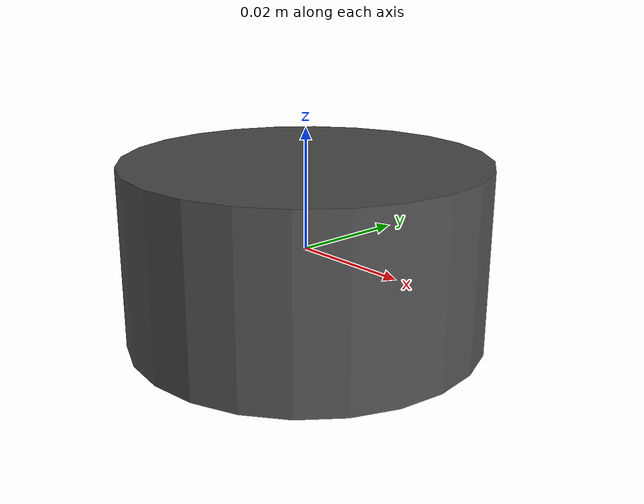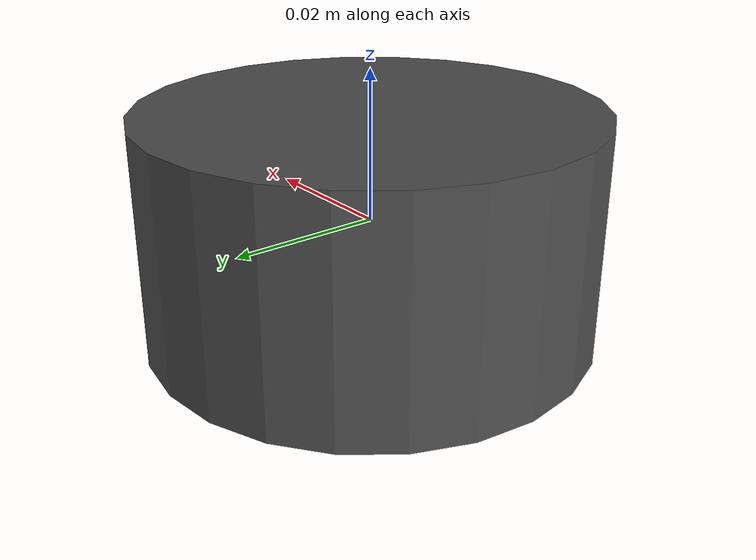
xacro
<?xml version="1.0"?>

<robot name="jetracer_sensor_kit" xmlns:xacro="http://ros.org/wiki/xacro">
  <xacro:include filename="$(find jetracer_driver)/urdf/elp_stereo_camera.urdf.xacro" />

  <xacro:arg name="base_frame" default="base_link" />
  <xacro:arg name="lidar_frame" default="laser" />
  <xacro:arg name="camera_frame" default="camera_camera_link" />
  <xacro:arg name="publish_camera_stereo_tf" default="false" />

  <xacro:arg name="lidar_x" default="0.0" />
  <xacro:arg name="lidar_y" default="0.0" />
  <xacro:arg name="lidar_z" default="0.0" />
  <xacro:arg name="lidar_roll" default="0.0" />
  <xacro:arg name="lidar_pitch" default="0.0" />
  <xacro:arg name="lidar_yaw" default="0.0" />

  <xacro:arg name="camera_x" default="0.0" />
  <xacro:arg name="camera_y" default="0.0" />
  <xacro:arg name="camera_z" default="0.0" />
  <xacro:arg name="camera_roll" default="0.0" />
  <xacro:arg name="camera_pitch" default="0.0" />
  <xacro:arg name="camera_yaw" default="0.0" />
  <xacro:arg name="camera_interocular" default="0.05" />
  <xacro:arg name="camera_mount_to_lens_x" default="0.0" />
  <xacro:arg name="camera_mount_to_lens_y" default="-0.0075" />
  <xacro:arg name="camera_mount_to_lens_z" default="0.0" />

  <link name="$(arg base_frame)" />
  <link name="$(arg camera_frame)_mount" />

  <link name="$(arg lidar_frame)">
    <visual>
      <geometry>
        <cylinder length="0.03" radius="0.03" />
      </geometry>
      <material name="lidar_gray">
        <color rgba="0.3 0.3 0.3 1.0" />
      </material>
    </visual>
  </link>

  <xacro:if value="$(arg publish_camera_stereo_tf)">
    <xacro:elp_stereo_camera name="$(arg camera_frame)" interocular="$(arg camera_interocular)" />
  </xacro:if>

  <xacro:unless value="$(arg publish_camera_stereo_tf)">
    <link name="$(arg camera_frame)" />
  </xacro:unless>

  <joint name="$(arg base_frame)_to_$(arg lidar_frame)" type="fixed">
    <parent link="$(arg base_frame)" />
    <child link="$(arg lidar_frame)" />
    <origin
      xyz="$(arg lidar_x) $(arg lidar_y) $(arg lidar_z)"
      rpy="$(arg lidar_roll) $(arg lidar_pitch) $(arg lidar_yaw)" />
  </joint>

  <joint name="$(arg base_frame)_to_$(arg camera_frame)_mount" type="fixed">
    <parent link="$(arg base_frame)" />
    <child link="$(arg camera_frame)_mount" />
    <origin
      xyz="$(arg camera_x) $(arg camera_y) $(arg camera_z)"
      rpy="$(arg camera_roll) $(arg camera_pitch) $(arg camera_yaw)" />
  </joint>

  <joint name="$(arg camera_frame)_mount_to_$(arg camera_frame)" type="fixed">
    <parent link="$(arg camera_frame)_mount" />
    <child link="$(arg camera_frame)" />
    <origin
      xyz="$(arg camera_mount_to_lens_x) $(arg camera_mount_to_lens_y) $(arg camera_mount_to_lens_z)"
      rpy="0 0 0" />
  </joint>
</robot>
